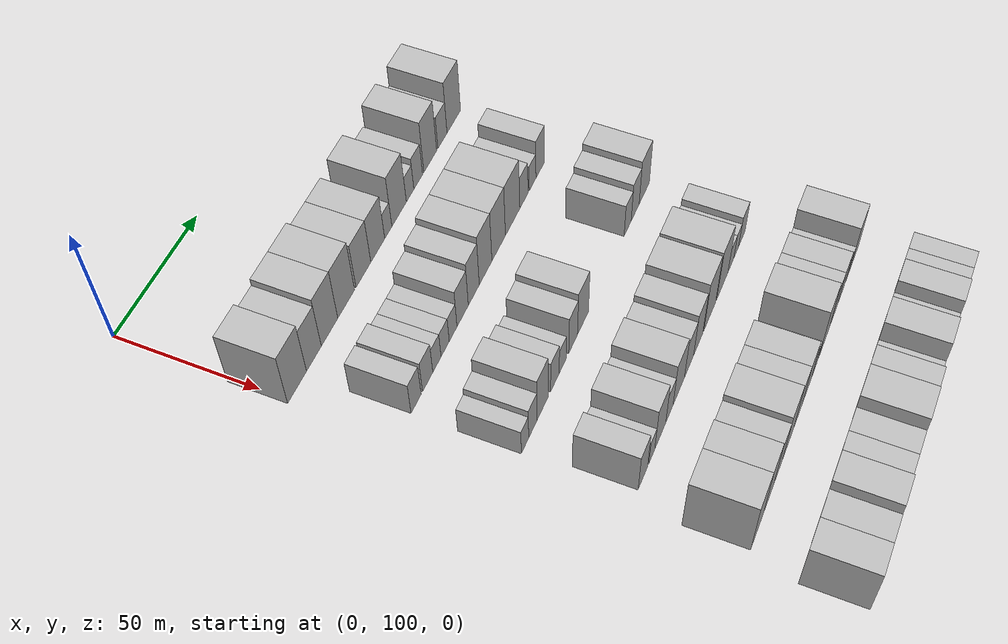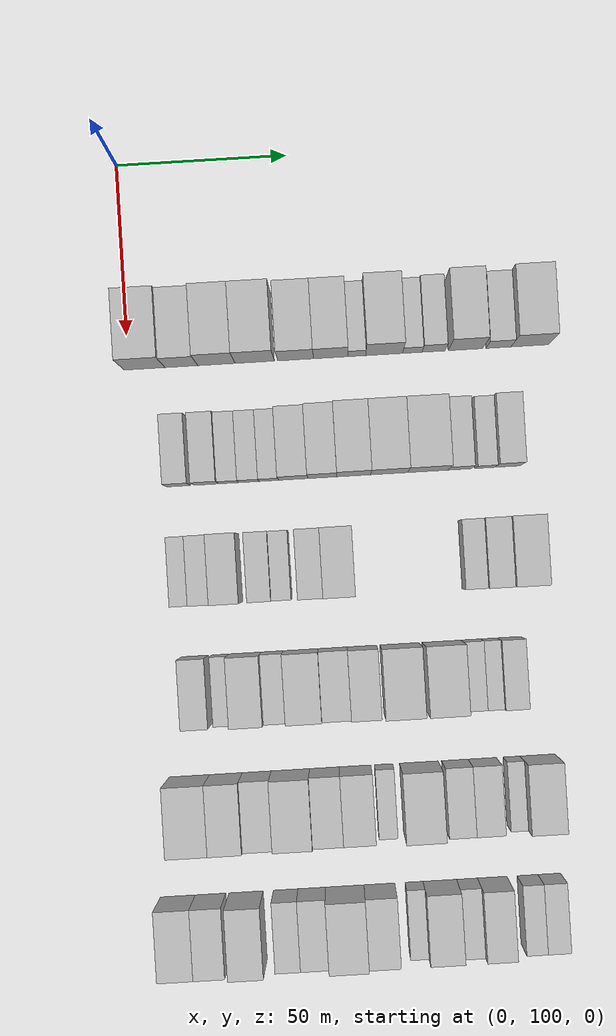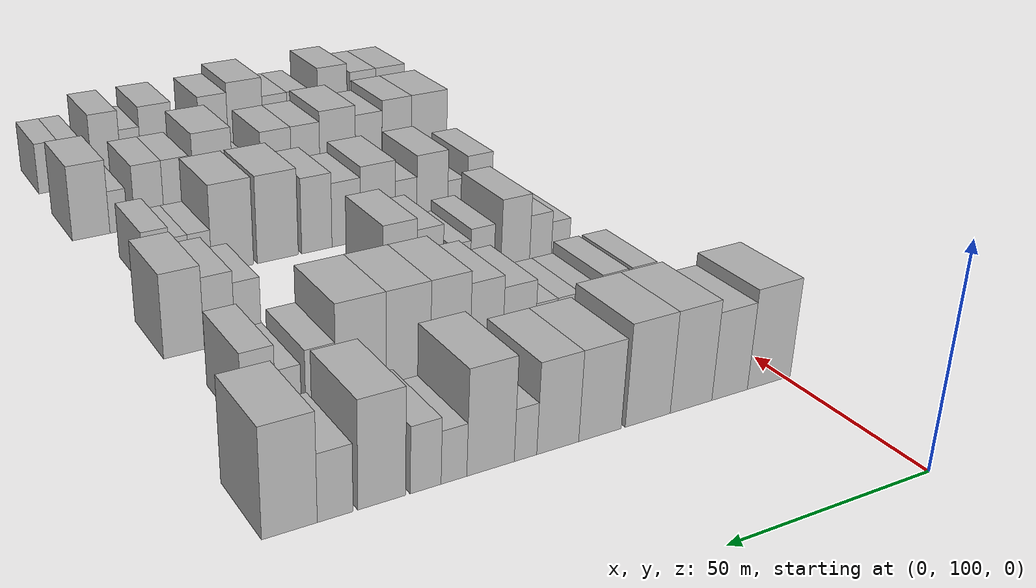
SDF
<sdf version="1.6">
 <world name="default">
  <model name="building_70">
   <static>1</static>
   <pose>50.0000 104.7687 0 0.000000 0.000000 0.000000</pose>
   <link name="link">
    <pose>0 0 12.00 0 0 0</pose>
    <collision name="collision"><geometry><box><size>20.0000 11.9978 24.0000</size></box></geometry></collision>
    <visual name="visual">
     <cast_shadows>0</cast_shadows>
     <geometry><box><size>20.0000 11.9978 24.0000</size></box></geometry>
     <material>
      <script>
       <uri>model://HANNAS_wall/materials/scripts</uri>
       <uri>model://HANNAS_wall/materials/textures</uri>
       <name>vrc/HANNAS_wall</name>
      </script>
     </material>
    </visual>
   </link>
  </model>
  <model name="building_71">
   <static>1</static>
   <pose>50.0000 115.5978 0 0.000000 0.000000 0.000000</pose>
   <link name="link">
    <pose>0 0 10.50 0 0 0</pose>
    <collision name="collision"><geometry><box><size>20.0000 9.6604 21.0000</size></box></geometry></collision>
    <visual name="visual">
     <cast_shadows>0</cast_shadows>
     <geometry><box><size>20.0000 9.6604 21.0000</size></box></geometry>
     <material>
      <script>
       <uri>model://HANNAS_wall/materials/scripts</uri>
       <uri>model://HANNAS_wall/materials/textures</uri>
       <name>vrc/HANNAS_wall</name>
      </script>
     </material>
    </visual>
   </link>
  </model>
  <model name="building_72">
   <static>1</static>
   <pose>50.0000 125.9151 0 0.000000 0.000000 0.000000</pose>
   <link name="link">
    <pose>0 0 12.00 0 0 0</pose>
    <collision name="collision"><geometry><box><size>20.0000 10.9743 24.0000</size></box></geometry></collision>
    <visual name="visual">
     <cast_shadows>0</cast_shadows>
     <geometry><box><size>20.0000 10.9743 24.0000</size></box></geometry>
     <material>
      <script>
       <uri>model://HANNAS_wall/materials/scripts</uri>
       <uri>model://HANNAS_wall/materials/textures</uri>
       <name>vrc/HANNAS_wall</name>
      </script>
     </material>
    </visual>
   </link>
  </model>
  <model name="building_73">
   <static>1</static>
   <pose>50.0000 137.1472 0 0.000000 0.000000 0.000000</pose>
   <link name="link">
    <pose>0 0 12.00 0 0 0</pose>
    <collision name="collision"><geometry><box><size>20.0000 11.4898 24.0000</size></box></geometry></collision>
    <visual name="visual">
     <cast_shadows>0</cast_shadows>
     <geometry><box><size>20.0000 11.4898 24.0000</size></box></geometry>
     <material>
      <script>
       <uri>model://HANNAS_wall/materials/scripts</uri>
       <uri>model://HANNAS_wall/materials/textures</uri>
       <name>vrc/HANNAS_wall</name>
      </script>
     </material>
    </visual>
   </link>
  </model>
  <model name="building_74">
   <static>1</static>
   <pose>50.0000 149.1418 0 0.000000 0.000000 0.000000</pose>
   <link name="link">
    <pose>0 0 10.50 0 0 0</pose>
    <collision name="collision"><geometry><box><size>20.0000 10.4993 21.0000</size></box></geometry></collision>
    <visual name="visual">
     <cast_shadows>0</cast_shadows>
     <geometry><box><size>20.0000 10.4993 21.0000</size></box></geometry>
     <material>
      <script>
       <uri>model://HANNAS_wall/materials/scripts</uri>
       <uri>model://HANNAS_wall/materials/textures</uri>
       <name>vrc/HANNAS_wall</name>
      </script>
     </material>
    </visual>
   </link>
  </model>
  <model name="building_75">
   <static>1</static>
   <pose>50.0000 159.4135 0 0.000000 0.000000 0.000000</pose>
   <link name="link">
    <pose>0 0 10.50 0 0 0</pose>
    <collision name="collision"><geometry><box><size>20.0000 10.0442 21.0000</size></box></geometry></collision>
    <visual name="visual">
     <cast_shadows>0</cast_shadows>
     <geometry><box><size>20.0000 10.0442 21.0000</size></box></geometry>
     <material>
      <script>
       <uri>model://HANNAS_wall/materials/scripts</uri>
       <uri>model://HANNAS_wall/materials/textures</uri>
       <name>vrc/HANNAS_wall</name>
      </script>
     </material>
    </visual>
   </link>
  </model>
  <model name="building_76">
   <static>1</static>
   <pose>50.0000 167.0654 0 0.000000 0.000000 0.000000</pose>
   <link name="link">
    <pose>0 0 6.00 0 0 0</pose>
    <collision name="collision"><geometry><box><size>20.0000 5.2596 12.0000</size></box></geometry></collision>
    <visual name="visual">
     <cast_shadows>0</cast_shadows>
     <geometry><box><size>20.0000 5.2596 12.0000</size></box></geometry>
     <material>
      <script>
       <uri>model://HANNAS_wall/materials/scripts</uri>
       <uri>model://HANNAS_wall/materials/textures</uri>
       <name>vrc/HANNAS_wall</name>
      </script>
     </material>
    </visual>
   </link>
  </model>
  <model name="building_77">
   <static>1</static>
   <pose>50.0000 175.1060 0 0.000000 0.000000 0.000000</pose>
   <link name="link">
    <pose>0 0 12.00 0 0 0</pose>
    <collision name="collision"><geometry><box><size>20.0000 10.8216 24.0000</size></box></geometry></collision>
    <visual name="visual">
     <cast_shadows>0</cast_shadows>
     <geometry><box><size>20.0000 10.8216 24.0000</size></box></geometry>
     <material>
      <script>
       <uri>model://HANNAS_wall/materials/scripts</uri>
       <uri>model://HANNAS_wall/materials/textures</uri>
       <name>vrc/HANNAS_wall</name>
      </script>
     </material>
    </visual>
   </link>
  </model>
  <model name="building_78">
   <static>1</static>
   <pose>50.0000 183.3770 0 0.000000 0.000000 0.000000</pose>
   <link name="link">
    <pose>0 0 6.00 0 0 0</pose>
    <collision name="collision"><geometry><box><size>20.0000 5.7204 12.0000</size></box></geometry></collision>
    <visual name="visual">
     <cast_shadows>0</cast_shadows>
     <geometry><box><size>20.0000 5.7204 12.0000</size></box></geometry>
     <material>
      <script>
       <uri>model://HANNAS_wall/materials/scripts</uri>
       <uri>model://HANNAS_wall/materials/textures</uri>
       <name>vrc/HANNAS_wall</name>
      </script>
     </material>
    </visual>
   </link>
  </model>
  <model name="building_79">
   <static>1</static>
   <pose>50.0000 189.6017 0 0.000000 0.000000 0.000000</pose>
   <link name="link">
    <pose>0 0 7.50 0 0 0</pose>
    <collision name="collision"><geometry><box><size>20.0000 6.7291 15.0000</size></box></geometry></collision>
    <visual name="visual">
     <cast_shadows>0</cast_shadows>
     <geometry><box><size>20.0000 6.7291 15.0000</size></box></geometry>
     <material>
      <script>
       <uri>model://HANNAS_wall/materials/scripts</uri>
       <uri>model://HANNAS_wall/materials/textures</uri>
       <name>vrc/HANNAS_wall</name>
      </script>
     </material>
    </visual>
   </link>
  </model>
  <model name="building_80">
   <static>1</static>
   <pose>50.0000 199.0172 0 0.000000 0.000000 0.000000</pose>
   <link name="link">
    <pose>0 0 12.00 0 0 0</pose>
    <collision name="collision"><geometry><box><size>20.0000 10.1020 24.0000</size></box></geometry></collision>
    <visual name="visual">
     <cast_shadows>0</cast_shadows>
     <geometry><box><size>20.0000 10.1020 24.0000</size></box></geometry>
     <material>
      <script>
       <uri>model://HANNAS_wall/materials/scripts</uri>
       <uri>model://HANNAS_wall/materials/textures</uri>
       <name>vrc/HANNAS_wall</name>
      </script>
     </material>
    </visual>
   </link>
  </model>
  <model name="building_81">
   <static>1</static>
   <pose>50.0000 208.7307 0 0.000000 0.000000 0.000000</pose>
   <link name="link">
    <pose>0 0 7.50 0 0 0</pose>
    <collision name="collision"><geometry><box><size>20.0000 7.3249 15.0000</size></box></geometry></collision>
    <visual name="visual">
     <cast_shadows>0</cast_shadows>
     <geometry><box><size>20.0000 7.3249 15.0000</size></box></geometry>
     <material>
      <script>
       <uri>model://HANNAS_wall/materials/scripts</uri>
       <uri>model://HANNAS_wall/materials/textures</uri>
       <name>vrc/HANNAS_wall</name>
      </script>
     </material>
    </visual>
   </link>
  </model>
  <model name="building_82">
   <static>1</static>
   <pose>50.0000 217.9473 0 0.000000 0.000000 0.000000</pose>
   <link name="link">
    <pose>0 0 12.00 0 0 0</pose>
    <collision name="collision"><geometry><box><size>20.0000 11.1084 24.0000</size></box></geometry></collision>
    <visual name="visual">
     <cast_shadows>0</cast_shadows>
     <geometry><box><size>20.0000 11.1084 24.0000</size></box></geometry>
     <material>
      <script>
       <uri>model://HANNAS_wall/materials/scripts</uri>
       <uri>model://HANNAS_wall/materials/textures</uri>
       <name>vrc/HANNAS_wall</name>
      </script>
     </material>
    </visual>
   </link>
  </model>
  <model name="building_185">
   <static>1</static>
   <pose>85.0000 112.7868 0 0.000000 0.000000 0.000000</pose>
   <link name="link">
    <pose>0 0 7.50 0 0 0</pose>
    <collision name="collision"><geometry><box><size>20.0000 6.9865 15.0000</size></box></geometry></collision>
    <visual name="visual">
     <cast_shadows>0</cast_shadows>
     <geometry><box><size>20.0000 6.9865 15.0000</size></box></geometry>
     <material>
      <script>
       <uri>model://HANNAS_wall/materials/scripts</uri>
       <uri>model://HANNAS_wall/materials/textures</uri>
       <name>vrc/HANNAS_wall</name>
      </script>
     </material>
    </visual>
   </link>
  </model>
  <model name="building_186">
   <static>1</static>
   <pose>85.0000 120.9057 0 0.000000 0.000000 0.000000</pose>
   <link name="link">
    <pose>0 0 7.50 0 0 0</pose>
    <collision name="collision"><geometry><box><size>20.0000 7.2514 15.0000</size></box></geometry></collision>
    <visual name="visual">
     <cast_shadows>0</cast_shadows>
     <geometry><box><size>20.0000 7.2514 15.0000</size></box></geometry>
     <material>
      <script>
       <uri>model://HANNAS_wall/materials/scripts</uri>
       <uri>model://HANNAS_wall/materials/textures</uri>
       <name>vrc/HANNAS_wall</name>
      </script>
     </material>
    </visual>
   </link>
  </model>
  <model name="building_187">
   <static>1</static>
   <pose>85.0000 127.4930 0 0.000000 0.000000 0.000000</pose>
   <link name="link">
    <pose>0 0 6.00 0 0 0</pose>
    <collision name="collision"><geometry><box><size>20.0000 5.9233 12.0000</size></box></geometry></collision>
    <visual name="visual">
     <cast_shadows>0</cast_shadows>
     <geometry><box><size>20.0000 5.9233 12.0000</size></box></geometry>
     <material>
      <script>
       <uri>model://HANNAS_wall/materials/scripts</uri>
       <uri>model://HANNAS_wall/materials/textures</uri>
       <name>vrc/HANNAS_wall</name>
      </script>
     </material>
    </visual>
   </link>
  </model>
  <model name="building_188">
   <static>1</static>
   <pose>85.0000 133.4436 0 0.000000 0.000000 0.000000</pose>
   <link name="link">
    <pose>0 0 6.00 0 0 0</pose>
    <collision name="collision"><geometry><box><size>20.0000 5.9779 12.0000</size></box></geometry></collision>
    <visual name="visual">
     <cast_shadows>0</cast_shadows>
     <geometry><box><size>20.0000 5.9779 12.0000</size></box></geometry>
     <material>
      <script>
       <uri>model://HANNAS_wall/materials/scripts</uri>
       <uri>model://HANNAS_wall/materials/textures</uri>
       <name>vrc/HANNAS_wall</name>
      </script>
     </material>
    </visual>
   </link>
  </model>
  <model name="building_189">
   <static>1</static>
   <pose>85.0000 139.2999 0 0.000000 0.000000 0.000000</pose>
   <link name="link">
    <pose>0 0 6.00 0 0 0</pose>
    <collision name="collision"><geometry><box><size>20.0000 5.7346 12.0000</size></box></geometry></collision>
    <visual name="visual">
     <cast_shadows>0</cast_shadows>
     <geometry><box><size>20.0000 5.7346 12.0000</size></box></geometry>
     <material>
      <script>
       <uri>model://HANNAS_wall/materials/scripts</uri>
       <uri>model://HANNAS_wall/materials/textures</uri>
       <name>vrc/HANNAS_wall</name>
      </script>
     </material>
    </visual>
   </link>
  </model>
  <model name="building_190">
   <static>1</static>
   <pose>85.0000 146.4327 0 0.000000 0.000000 0.000000</pose>
   <link name="link">
    <pose>0 0 9.00 0 0 0</pose>
    <collision name="collision"><geometry><box><size>20.0000 8.5310 18.0000</size></box></geometry></collision>
    <visual name="visual">
     <cast_shadows>0</cast_shadows>
     <geometry><box><size>20.0000 8.5310 18.0000</size></box></geometry>
     <material>
      <script>
       <uri>model://HANNAS_wall/materials/scripts</uri>
       <uri>model://HANNAS_wall/materials/textures</uri>
       <name>vrc/HANNAS_wall</name>
      </script>
     </material>
    </visual>
   </link>
  </model>
  <model name="building_191">
   <static>1</static>
   <pose>85.0000 154.9079 0 0.000000 0.000000 0.000000</pose>
   <link name="link">
    <pose>0 0 10.50 0 0 0</pose>
    <collision name="collision"><geometry><box><size>20.0000 8.4193 21.0000</size></box></geometry></collision>
    <visual name="visual">
     <cast_shadows>0</cast_shadows>
     <geometry><box><size>20.0000 8.4193 21.0000</size></box></geometry>
     <material>
      <script>
       <uri>model://HANNAS_wall/materials/scripts</uri>
       <uri>model://HANNAS_wall/materials/textures</uri>
       <name>vrc/HANNAS_wall</name>
      </script>
     </material>
    </visual>
   </link>
  </model>
  <model name="building_192">
   <static>1</static>
   <pose>85.0000 164.0700 0 0.000000 0.000000 0.000000</pose>
   <link name="link">
    <pose>0 0 12.00 0 0 0</pose>
    <collision name="collision"><geometry><box><size>20.0000 9.9051 24.0000</size></box></geometry></collision>
    <visual name="visual">
     <cast_shadows>0</cast_shadows>
     <geometry><box><size>20.0000 9.9051 24.0000</size></box></geometry>
     <material>
      <script>
       <uri>model://HANNAS_wall/materials/scripts</uri>
       <uri>model://HANNAS_wall/materials/textures</uri>
       <name>vrc/HANNAS_wall</name>
      </script>
     </material>
    </visual>
   </link>
  </model>
  <model name="building_193">
   <static>1</static>
   <pose>85.0000 174.4506 0 0.000000 0.000000 0.000000</pose>
   <link name="link">
    <pose>0 0 12.00 0 0 0</pose>
    <collision name="collision"><geometry><box><size>20.0000 10.8561 24.0000</size></box></geometry></collision>
    <visual name="visual">
     <cast_shadows>0</cast_shadows>
     <geometry><box><size>20.0000 10.8561 24.0000</size></box></geometry>
     <material>
      <script>
       <uri>model://HANNAS_wall/materials/scripts</uri>
       <uri>model://HANNAS_wall/materials/textures</uri>
       <name>vrc/HANNAS_wall</name>
      </script>
     </material>
    </visual>
   </link>
  </model>
  <model name="building_194">
   <static>1</static>
   <pose>85.0000 185.8056 0 0.000000 0.000000 0.000000</pose>
   <link name="link">
    <pose>0 0 12.00 0 0 0</pose>
    <collision name="collision"><geometry><box><size>20.0000 11.8539 24.0000</size></box></geometry></collision>
    <visual name="visual">
     <cast_shadows>0</cast_shadows>
     <geometry><box><size>20.0000 11.8539 24.0000</size></box></geometry>
     <material>
      <script>
       <uri>model://HANNAS_wall/materials/scripts</uri>
       <uri>model://HANNAS_wall/materials/textures</uri>
       <name>vrc/HANNAS_wall</name>
      </script>
     </material>
    </visual>
   </link>
  </model>
  <model name="building_195">
   <static>1</static>
   <pose>85.0000 195.1977 0 0.000000 0.000000 0.000000</pose>
   <link name="link">
    <pose>0 0 7.50 0 0 0</pose>
    <collision name="collision"><geometry><box><size>20.0000 6.9302 15.0000</size></box></geometry></collision>
    <visual name="visual">
     <cast_shadows>0</cast_shadows>
     <geometry><box><size>20.0000 6.9302 15.0000</size></box></geometry>
     <material>
      <script>
       <uri>model://HANNAS_wall/materials/scripts</uri>
       <uri>model://HANNAS_wall/materials/textures</uri>
       <name>vrc/HANNAS_wall</name>
      </script>
     </material>
    </visual>
   </link>
  </model>
  <model name="building_196">
   <static>1</static>
   <pose>85.0000 202.5391 0 0.000000 0.000000 0.000000</pose>
   <link name="link">
    <pose>0 0 6.00 0 0 0</pose>
    <collision name="collision"><geometry><box><size>20.0000 5.7527 12.0000</size></box></geometry></collision>
    <visual name="visual">
     <cast_shadows>0</cast_shadows>
     <geometry><box><size>20.0000 5.7527 12.0000</size></box></geometry>
     <material>
      <script>
       <uri>model://HANNAS_wall/materials/scripts</uri>
       <uri>model://HANNAS_wall/materials/textures</uri>
       <name>vrc/HANNAS_wall</name>
      </script>
     </material>
    </visual>
   </link>
  </model>
  <model name="building_197">
   <static>1</static>
   <pose>85.0000 209.1763 0 0.000000 0.000000 0.000000</pose>
   <link name="link">
    <pose>0 0 9.00 0 0 0</pose>
    <collision name="collision"><geometry><box><size>20.0000 7.5217 18.0000</size></box></geometry></collision>
    <visual name="visual">
     <cast_shadows>0</cast_shadows>
     <geometry><box><size>20.0000 7.5217 18.0000</size></box></geometry>
     <material>
      <script>
       <uri>model://HANNAS_wall/materials/scripts</uri>
       <uri>model://HANNAS_wall/materials/textures</uri>
       <name>vrc/HANNAS_wall</name>
      </script>
     </material>
    </visual>
   </link>
  </model>
  <model name="building_314">
   <static>1</static>
   <pose>120.0000 111.7312 0 0.000000 0.000000 0.000000</pose>
   <link name="link">
    <pose>0 0 6.00 0 0 0</pose>
    <collision name="collision"><geometry><box><size>20.0000 5.4751 12.0000</size></box></geometry></collision>
    <visual name="visual">
     <cast_shadows>0</cast_shadows>
     <geometry><box><size>20.0000 5.4751 12.0000</size></box></geometry>
     <material>
      <script>
       <uri>model://HANNAS_wall/materials/scripts</uri>
       <uri>model://HANNAS_wall/materials/textures</uri>
       <name>vrc/HANNAS_wall</name>
      </script>
     </material>
    </visual>
   </link>
  </model>
  <model name="building_315">
   <static>1</static>
   <pose>120.0000 117.7094 0 0.000000 0.000000 0.000000</pose>
   <link name="link">
    <pose>0 0 7.50 0 0 0</pose>
    <collision name="collision"><geometry><box><size>20.0000 6.4812 15.0000</size></box></geometry></collision>
    <visual name="visual">
     <cast_shadows>0</cast_shadows>
     <geometry><box><size>20.0000 6.4812 15.0000</size></box></geometry>
     <material>
      <script>
       <uri>model://HANNAS_wall/materials/scripts</uri>
       <uri>model://HANNAS_wall/materials/textures</uri>
       <name>vrc/HANNAS_wall</name>
      </script>
     </material>
    </visual>
   </link>
  </model>
  <model name="building_316">
   <static>1</static>
   <pose>120.0000 125.1787 0 0.000000 0.000000 0.000000</pose>
   <link name="link">
    <pose>0 0 10.50 0 0 0</pose>
    <collision name="collision"><geometry><box><size>20.0000 8.4575 21.0000</size></box></geometry></collision>
    <visual name="visual">
     <cast_shadows>0</cast_shadows>
     <geometry><box><size>20.0000 8.4575 21.0000</size></box></geometry>
     <material>
      <script>
       <uri>model://HANNAS_wall/materials/scripts</uri>
       <uri>model://HANNAS_wall/materials/textures</uri>
       <name>vrc/HANNAS_wall</name>
      </script>
     </material>
    </visual>
   </link>
  </model>
  <model name="building_317">
   <static>1</static>
   <pose>120.0000 134.8123 0 0.000000 0.000000 0.000000</pose>
   <link name="link">
    <pose>0 0 7.50 0 0 0</pose>
    <collision name="collision"><geometry><box><size>20.0000 6.8098 15.0000</size></box></geometry></collision>
    <visual name="visual">
     <cast_shadows>0</cast_shadows>
     <geometry><box><size>20.0000 6.8098 15.0000</size></box></geometry>
     <material>
      <script>
       <uri>model://HANNAS_wall/materials/scripts</uri>
       <uri>model://HANNAS_wall/materials/textures</uri>
       <name>vrc/HANNAS_wall</name>
      </script>
     </material>
    </visual>
   </link>
  </model>
  <model name="building_318">
   <static>1</static>
   <pose>120.0000 141.0843 0 0.000000 0.000000 0.000000</pose>
   <link name="link">
    <pose>0 0 6.00 0 0 0</pose>
    <collision name="collision"><geometry><box><size>20.0000 5.7341 12.0000</size></box></geometry></collision>
    <visual name="visual">
     <cast_shadows>0</cast_shadows>
     <geometry><box><size>20.0000 5.7341 12.0000</size></box></geometry>
     <material>
      <script>
       <uri>model://HANNAS_wall/materials/scripts</uri>
       <uri>model://HANNAS_wall/materials/textures</uri>
       <name>vrc/HANNAS_wall</name>
      </script>
     </material>
    </visual>
   </link>
  </model>
  <model name="building_319">
   <static>1</static>
   <pose>120.0000 149.5598 0 0.000000 0.000000 0.000000</pose>
   <link name="link">
    <pose>0 0 9.00 0 0 0</pose>
    <collision name="collision"><geometry><box><size>20.0000 7.2170 18.0000</size></box></geometry></collision>
    <visual name="visual">
     <cast_shadows>0</cast_shadows>
     <geometry><box><size>20.0000 7.2170 18.0000</size></box></geometry>
     <material>
      <script>
       <uri>model://HANNAS_wall/materials/scripts</uri>
       <uri>model://HANNAS_wall/materials/textures</uri>
       <name>vrc/HANNAS_wall</name>
      </script>
     </material>
    </visual>
   </link>
  </model>
  <model name="building_320">
   <static>1</static>
   <pose>120.0000 157.7637 0 0.000000 0.000000 0.000000</pose>
   <link name="link">
    <pose>0 0 10.50 0 0 0</pose>
    <collision name="collision"><geometry><box><size>20.0000 9.1908 21.0000</size></box></geometry></collision>
    <visual name="visual">
     <cast_shadows>0</cast_shadows>
     <geometry><box><size>20.0000 9.1908 21.0000</size></box></geometry>
     <material>
      <script>
       <uri>model://HANNAS_wall/materials/scripts</uri>
       <uri>model://HANNAS_wall/materials/textures</uri>
       <name>vrc/HANNAS_wall</name>
      </script>
     </material>
    </visual>
   </link>
  </model>
  <model name="building_321">
   <static>1</static>
   <pose>120.0000 197.0900 0 0.000000 0.000000 0.000000</pose>
   <link name="link">
    <pose>0 0 7.50 0 0 0</pose>
    <collision name="collision"><geometry><box><size>20.0000 6.4872 15.0000</size></box></geometry></collision>
    <visual name="visual">
     <cast_shadows>0</cast_shadows>
     <geometry><box><size>20.0000 6.4872 15.0000</size></box></geometry>
     <material>
      <script>
       <uri>model://HANNAS_wall/materials/scripts</uri>
       <uri>model://HANNAS_wall/materials/textures</uri>
       <name>vrc/HANNAS_wall</name>
      </script>
     </material>
    </visual>
   </link>
  </model>
  <model name="building_322">
   <static>1</static>
   <pose>120.0000 204.0534 0 0.000000 0.000000 0.000000</pose>
   <link name="link">
    <pose>0 0 9.00 0 0 0</pose>
    <collision name="collision"><geometry><box><size>20.0000 7.4396 18.0000</size></box></geometry></collision>
    <visual name="visual">
     <cast_shadows>0</cast_shadows>
     <geometry><box><size>20.0000 7.4396 18.0000</size></box></geometry>
     <material>
      <script>
       <uri>model://HANNAS_wall/materials/scripts</uri>
       <uri>model://HANNAS_wall/materials/textures</uri>
       <name>vrc/HANNAS_wall</name>
      </script>
     </material>
    </visual>
   </link>
  </model>
  <model name="building_323">
   <static>1</static>
   <pose>120.0000 212.6141 0 0.000000 0.000000 0.000000</pose>
   <link name="link">
    <pose>0 0 10.50 0 0 0</pose>
    <collision name="collision"><geometry><box><size>20.0000 9.6819 21.0000</size></box></geometry></collision>
    <visual name="visual">
     <cast_shadows>0</cast_shadows>
     <geometry><box><size>20.0000 9.6819 21.0000</size></box></geometry>
     <material>
      <script>
       <uri>model://HANNAS_wall/materials/scripts</uri>
       <uri>model://HANNAS_wall/materials/textures</uri>
       <name>vrc/HANNAS_wall</name>
      </script>
     </material>
    </visual>
   </link>
  </model>
  <model name="building_440">
   <static>1</static>
   <pose>155.0000 114.5446 0 0.000000 0.000000 0.000000</pose>
   <link name="link">
    <pose>0 0 9.00 0 0 0</pose>
    <collision name="collision"><geometry><box><size>20.0000 7.8496 18.0000</size></box></geometry></collision>
    <visual name="visual">
     <cast_shadows>0</cast_shadows>
     <geometry><box><size>20.0000 7.8496 18.0000</size></box></geometry>
     <material>
      <script>
       <uri>model://HANNAS_wall/materials/scripts</uri>
       <uri>model://HANNAS_wall/materials/textures</uri>
       <name>vrc/HANNAS_wall</name>
      </script>
     </material>
    </visual>
   </link>
  </model>
  <model name="building_441">
   <static>1</static>
   <pose>155.0000 122.0059 0 0.000000 0.000000 0.000000</pose>
   <link name="link">
    <pose>0 0 6.00 0 0 0</pose>
    <collision name="collision"><geometry><box><size>20.0000 5.0730 12.0000</size></box></geometry></collision>
    <visual name="visual">
     <cast_shadows>0</cast_shadows>
     <geometry><box><size>20.0000 5.0730 12.0000</size></box></geometry>
     <material>
      <script>
       <uri>model://HANNAS_wall/materials/scripts</uri>
       <uri>model://HANNAS_wall/materials/textures</uri>
       <name>vrc/HANNAS_wall</name>
      </script>
     </material>
    </visual>
   </link>
  </model>
  <model name="building_442">
   <static>1</static>
   <pose>155.0000 129.2894 0 0.000000 0.000000 0.000000</pose>
   <link name="link">
    <pose>0 0 10.50 0 0 0</pose>
    <collision name="collision"><geometry><box><size>20.0000 9.4941 21.0000</size></box></geometry></collision>
    <visual name="visual">
     <cast_shadows>0</cast_shadows>
     <geometry><box><size>20.0000 9.4941 21.0000</size></box></geometry>
     <material>
      <script>
       <uri>model://HANNAS_wall/materials/scripts</uri>
       <uri>model://HANNAS_wall/materials/textures</uri>
       <name>vrc/HANNAS_wall</name>
      </script>
     </material>
    </visual>
   </link>
  </model>
  <model name="building_443">
   <static>1</static>
   <pose>155.0000 137.2567 0 0.000000 0.000000 0.000000</pose>
   <link name="link">
    <pose>0 0 7.50 0 0 0</pose>
    <collision name="collision"><geometry><box><size>20.0000 6.4404 15.0000</size></box></geometry></collision>
    <visual name="visual">
     <cast_shadows>0</cast_shadows>
     <geometry><box><size>20.0000 6.4404 15.0000</size></box></geometry>
     <material>
      <script>
       <uri>model://HANNAS_wall/materials/scripts</uri>
       <uri>model://HANNAS_wall/materials/textures</uri>
       <name>vrc/HANNAS_wall</name>
      </script>
     </material>
    </visual>
   </link>
  </model>
  <model name="building_444">
   <static>1</static>
   <pose>155.0000 145.6198 0 0.000000 0.000000 0.000000</pose>
   <link name="link">
    <pose>0 0 10.50 0 0 0</pose>
    <collision name="collision"><geometry><box><size>20.0000 10.2858 21.0000</size></box></geometry></collision>
    <visual name="visual">
     <cast_shadows>0</cast_shadows>
     <geometry><box><size>20.0000 10.2858 21.0000</size></box></geometry>
     <material>
      <script>
       <uri>model://HANNAS_wall/materials/scripts</uri>
       <uri>model://HANNAS_wall/materials/textures</uri>
       <name>vrc/HANNAS_wall</name>
      </script>
     </material>
    </visual>
   </link>
  </model>
  <model name="building_445">
   <static>1</static>
   <pose>155.0000 154.9505 0 0.000000 0.000000 0.000000</pose>
   <link name="link">
    <pose>0 0 9.00 0 0 0</pose>
    <collision name="collision"><geometry><box><size>20.0000 8.3755 18.0000</size></box></geometry></collision>
    <visual name="visual">
     <cast_shadows>0</cast_shadows>
     <geometry><box><size>20.0000 8.3755 18.0000</size></box></geometry>
     <material>
      <script>
       <uri>model://HANNAS_wall/materials/scripts</uri>
       <uri>model://HANNAS_wall/materials/textures</uri>
       <name>vrc/HANNAS_wall</name>
      </script>
     </material>
    </visual>
   </link>
  </model>
  <model name="building_446">
   <static>1</static>
   <pose>155.0000 163.4527 0 0.000000 0.000000 0.000000</pose>
   <link name="link">
    <pose>0 0 10.50 0 0 0</pose>
    <collision name="collision"><geometry><box><size>20.0000 8.6290 21.0000</size></box></geometry></collision>
    <visual name="visual">
     <cast_shadows>0</cast_shadows>
     <geometry><box><size>20.0000 8.6290 21.0000</size></box></geometry>
     <material>
      <script>
       <uri>model://HANNAS_wall/materials/scripts</uri>
       <uri>model://HANNAS_wall/materials/textures</uri>
       <name>vrc/HANNAS_wall</name>
      </script>
     </material>
    </visual>
   </link>
  </model>
  <model name="building_447">
   <static>1</static>
   <pose>155.0000 174.4686 0 0.000000 0.000000 0.000000</pose>
   <link name="link">
    <pose>0 0 12.00 0 0 0</pose>
    <collision name="collision"><geometry><box><size>20.0000 11.4028 24.0000</size></box></geometry></collision>
    <visual name="visual">
     <cast_shadows>0</cast_shadows>
     <geometry><box><size>20.0000 11.4028 24.0000</size></box></geometry>
     <material>
      <script>
       <uri>model://HANNAS_wall/materials/scripts</uri>
       <uri>model://HANNAS_wall/materials/textures</uri>
       <name>vrc/HANNAS_wall</name>
      </script>
     </material>
    </visual>
   </link>
  </model>
  <model name="building_448">
   <static>1</static>
   <pose>155.0000 186.8073 0 0.000000 0.000000 0.000000</pose>
   <link name="link">
    <pose>0 0 12.00 0 0 0</pose>
    <collision name="collision"><geometry><box><size>20.0000 11.2744 24.0000</size></box></geometry></collision>
    <visual name="visual">
     <cast_shadows>0</cast_shadows>
     <geometry><box><size>20.0000 11.2744 24.0000</size></box></geometry>
     <material>
      <script>
       <uri>model://HANNAS_wall/materials/scripts</uri>
       <uri>model://HANNAS_wall/materials/textures</uri>
       <name>vrc/HANNAS_wall</name>
      </script>
     </material>
    </visual>
   </link>
  </model>
  <model name="building_449">
   <static>1</static>
   <pose>155.0000 195.3979 0 0.000000 0.000000 0.000000</pose>
   <link name="link">
    <pose>0 0 6.00 0 0 0</pose>
    <collision name="collision"><geometry><box><size>20.0000 5.9069 12.0000</size></box></geometry></collision>
    <visual name="visual">
     <cast_shadows>0</cast_shadows>
     <geometry><box><size>20.0000 5.9069 12.0000</size></box></geometry>
     <material>
      <script>
       <uri>model://HANNAS_wall/materials/scripts</uri>
       <uri>model://HANNAS_wall/materials/textures</uri>
       <name>vrc/HANNAS_wall</name>
      </script>
     </material>
    </visual>
   </link>
  </model>
  <model name="building_450">
   <static>1</static>
   <pose>155.0000 200.7643 0 0.000000 0.000000 0.000000</pose>
   <link name="link">
    <pose>0 0 6.00 0 0 0</pose>
    <collision name="collision"><geometry><box><size>20.0000 4.8259 12.0000</size></box></geometry></collision>
    <visual name="visual">
     <cast_shadows>0</cast_shadows>
     <geometry><box><size>20.0000 4.8259 12.0000</size></box></geometry>
     <material>
      <script>
       <uri>model://HANNAS_wall/materials/scripts</uri>
       <uri>model://HANNAS_wall/materials/textures</uri>
       <name>vrc/HANNAS_wall</name>
      </script>
     </material>
    </visual>
   </link>
  </model>
  <model name="building_451">
   <static>1</static>
   <pose>155.0000 206.6216 0 0.000000 0.000000 0.000000</pose>
   <link name="link">
    <pose>0 0 7.50 0 0 0</pose>
    <collision name="collision"><geometry><box><size>20.0000 6.8889 15.0000</size></box></geometry></collision>
    <visual name="visual">
     <cast_shadows>0</cast_shadows>
     <geometry><box><size>20.0000 6.8889 15.0000</size></box></geometry>
     <material>
      <script>
       <uri>model://HANNAS_wall/materials/scripts</uri>
       <uri>model://HANNAS_wall/materials/textures</uri>
       <name>vrc/HANNAS_wall</name>
      </script>
     </material>
    </visual>
   </link>
  </model>
  <model name="building_559">
   <static>1</static>
   <pose>190.0000 110.7737 0 0.000000 0.000000 0.000000</pose>
   <link name="link">
    <pose>0 0 12.00 0 0 0</pose>
    <collision name="collision"><geometry><box><size>20.0000 11.8455 24.0000</size></box></geometry></collision>
    <visual name="visual">
     <cast_shadows>0</cast_shadows>
     <geometry><box><size>20.0000 11.8455 24.0000</size></box></geometry>
     <material>
      <script>
       <uri>model://HANNAS_wall/materials/scripts</uri>
       <uri>model://HANNAS_wall/materials/textures</uri>
       <name>vrc/HANNAS_wall</name>
      </script>
     </material>
    </visual>
   </link>
  </model>
  <model name="building_560">
   <static>1</static>
   <pose>190.0000 121.4995 0 0.000000 0.000000 0.000000</pose>
   <link name="link">
    <pose>0 0 12.00 0 0 0</pose>
    <collision name="collision"><geometry><box><size>20.0000 9.6060 24.0000</size></box></geometry></collision>
    <visual name="visual">
     <cast_shadows>0</cast_shadows>
     <geometry><box><size>20.0000 9.6060 24.0000</size></box></geometry>
     <material>
      <script>
       <uri>model://HANNAS_wall/materials/scripts</uri>
       <uri>model://HANNAS_wall/materials/textures</uri>
       <name>vrc/HANNAS_wall</name>
      </script>
     </material>
    </visual>
   </link>
  </model>
  <model name="building_561">
   <static>1</static>
   <pose>190.0000 130.5636 0 0.000000 0.000000 0.000000</pose>
   <link name="link">
    <pose>0 0 10.50 0 0 0</pose>
    <collision name="collision"><geometry><box><size>20.0000 8.5221 21.0000</size></box></geometry></collision>
    <visual name="visual">
     <cast_shadows>0</cast_shadows>
     <geometry><box><size>20.0000 8.5221 21.0000</size></box></geometry>
     <material>
      <script>
       <uri>model://HANNAS_wall/materials/scripts</uri>
       <uri>model://HANNAS_wall/materials/textures</uri>
       <name>vrc/HANNAS_wall</name>
      </script>
     </material>
    </visual>
   </link>
  </model>
  <model name="building_562">
   <static>1</static>
   <pose>190.0000 140.4429 0 0.000000 0.000000 0.000000</pose>
   <link name="link">
    <pose>0 0 12.00 0 0 0</pose>
    <collision name="collision"><geometry><box><size>20.0000 11.2365 24.0000</size></box></geometry></collision>
    <visual name="visual">
     <cast_shadows>0</cast_shadows>
     <geometry><box><size>20.0000 11.2365 24.0000</size></box></geometry>
     <material>
      <script>
       <uri>model://HANNAS_wall/materials/scripts</uri>
       <uri>model://HANNAS_wall/materials/textures</uri>
       <name>vrc/HANNAS_wall</name>
      </script>
     </material>
    </visual>
   </link>
  </model>
  <model name="building_563">
   <static>1</static>
   <pose>190.0000 150.4472 0 0.000000 0.000000 0.000000</pose>
   <link name="link">
    <pose>0 0 10.50 0 0 0</pose>
    <collision name="collision"><geometry><box><size>20.0000 8.7721 21.0000</size></box></geometry></collision>
    <visual name="visual">
     <cast_shadows>0</cast_shadows>
     <geometry><box><size>20.0000 8.7721 21.0000</size></box></geometry>
     <material>
      <script>
       <uri>model://HANNAS_wall/materials/scripts</uri>
       <uri>model://HANNAS_wall/materials/textures</uri>
       <name>vrc/HANNAS_wall</name>
      </script>
     </material>
    </visual>
   </link>
  </model>
  <model name="building_564">
   <static>1</static>
   <pose>190.0000 159.4372 0 0.000000 0.000000 0.000000</pose>
   <link name="link">
    <pose>0 0 10.50 0 0 0</pose>
    <collision name="collision"><geometry><box><size>20.0000 9.2080 21.0000</size></box></geometry></collision>
    <visual name="visual">
     <cast_shadows>0</cast_shadows>
     <geometry><box><size>20.0000 9.2080 21.0000</size></box></geometry>
     <material>
      <script>
       <uri>model://HANNAS_wall/materials/scripts</uri>
       <uri>model://HANNAS_wall/materials/textures</uri>
       <name>vrc/HANNAS_wall</name>
      </script>
     </material>
    </visual>
   </link>
  </model>
  <model name="building_565">
   <static>1</static>
   <pose>190.0000 167.7416 0 0.000000 0.000000 0.000000</pose>
   <link name="link">
    <pose>0 0 6.00 0 0 0</pose>
    <collision name="collision"><geometry><box><size>20.0000 5.4009 12.0000</size></box></geometry></collision>
    <visual name="visual">
     <cast_shadows>0</cast_shadows>
     <geometry><box><size>20.0000 5.4009 12.0000</size></box></geometry>
     <material>
      <script>
       <uri>model://HANNAS_wall/materials/scripts</uri>
       <uri>model://HANNAS_wall/materials/textures</uri>
       <name>vrc/HANNAS_wall</name>
      </script>
     </material>
    </visual>
   </link>
  </model>
  <model name="building_566">
   <static>1</static>
   <pose>190.0000 178.1145 0 0.000000 0.000000 0.000000</pose>
   <link name="link">
    <pose>0 0 12.00 0 0 0</pose>
    <collision name="collision"><geometry><box><size>20.0000 11.3448 24.0000</size></box></geometry></collision>
    <visual name="visual">
     <cast_shadows>0</cast_shadows>
     <geometry><box><size>20.0000 11.3448 24.0000</size></box></geometry>
     <material>
      <script>
       <uri>model://HANNAS_wall/materials/scripts</uri>
       <uri>model://HANNAS_wall/materials/textures</uri>
       <name>vrc/HANNAS_wall</name>
      </script>
     </material>
    </visual>
   </link>
  </model>
  <model name="building_567">
   <static>1</static>
   <pose>190.0000 188.6917 0 0.000000 0.000000 0.000000</pose>
   <link name="link">
    <pose>0 0 9.00 0 0 0</pose>
    <collision name="collision"><geometry><box><size>20.0000 7.8095 18.0000</size></box></geometry></collision>
    <visual name="visual">
     <cast_shadows>0</cast_shadows>
     <geometry><box><size>20.0000 7.8095 18.0000</size></box></geometry>
     <material>
      <script>
       <uri>model://HANNAS_wall/materials/scripts</uri>
       <uri>model://HANNAS_wall/materials/textures</uri>
       <name>vrc/HANNAS_wall</name>
      </script>
     </material>
    </visual>
   </link>
  </model>
  <model name="building_568">
   <static>1</static>
   <pose>190.0000 196.7308 0 0.000000 0.000000 0.000000</pose>
   <link name="link">
    <pose>0 0 9.00 0 0 0</pose>
    <collision name="collision"><geometry><box><size>20.0000 8.2688 18.0000</size></box></geometry></collision>
    <visual name="visual">
     <cast_shadows>0</cast_shadows>
     <geometry><box><size>20.0000 8.2688 18.0000</size></box></geometry>
     <material>
      <script>
       <uri>model://HANNAS_wall/materials/scripts</uri>
       <uri>model://HANNAS_wall/materials/textures</uri>
       <name>vrc/HANNAS_wall</name>
      </script>
     </material>
    </visual>
   </link>
  </model>
  <model name="building_569">
   <static>1</static>
   <pose>190.0000 205.3444 0 0.000000 0.000000 0.000000</pose>
   <link name="link">
    <pose>0 0 6.00 0 0 0</pose>
    <collision name="collision"><geometry><box><size>20.0000 4.9583 12.0000</size></box></geometry></collision>
    <visual name="visual">
     <cast_shadows>0</cast_shadows>
     <geometry><box><size>20.0000 4.9583 12.0000</size></box></geometry>
     <material>
      <script>
       <uri>model://HANNAS_wall/materials/scripts</uri>
       <uri>model://HANNAS_wall/materials/textures</uri>
       <name>vrc/HANNAS_wall</name>
      </script>
     </material>
    </visual>
   </link>
  </model>
  <model name="building_570">
   <static>1</static>
   <pose>190.0000 212.9445 0 0.000000 0.000000 0.000000</pose>
   <link name="link">
    <pose>0 0 10.50 0 0 0</pose>
    <collision name="collision"><geometry><box><size>20.0000 10.2419 21.0000</size></box></geometry></collision>
    <visual name="visual">
     <cast_shadows>0</cast_shadows>
     <geometry><box><size>20.0000 10.2419 21.0000</size></box></geometry>
     <material>
      <script>
       <uri>model://HANNAS_wall/materials/scripts</uri>
       <uri>model://HANNAS_wall/materials/textures</uri>
       <name>vrc/HANNAS_wall</name>
      </script>
     </material>
    </visual>
   </link>
  </model>
  <model name="building_681">
   <static>1</static>
   <pose>225.0000 105.2729 0 0.000000 0.000000 0.000000</pose>
   <link name="link">
    <pose>0 0 10.50 0 0 0</pose>
    <collision name="collision"><geometry><box><size>20.0000 10.2007 21.0000</size></box></geometry></collision>
    <visual name="visual">
     <cast_shadows>0</cast_shadows>
     <geometry><box><size>20.0000 10.2007 21.0000</size></box></geometry>
     <material>
      <script>
       <uri>model://HANNAS_wall/materials/scripts</uri>
       <uri>model://HANNAS_wall/materials/textures</uri>
       <name>vrc/HANNAS_wall</name>
      </script>
     </material>
    </visual>
   </link>
  </model>
  <model name="building_682">
   <static>1</static>
   <pose>225.0000 114.8374 0 0.000000 0.000000 0.000000</pose>
   <link name="link">
    <pose>0 0 10.50 0 0 0</pose>
    <collision name="collision"><geometry><box><size>20.0000 8.9283 21.0000</size></box></geometry></collision>
    <visual name="visual">
     <cast_shadows>0</cast_shadows>
     <geometry><box><size>20.0000 8.9283 21.0000</size></box></geometry>
     <material>
      <script>
       <uri>model://HANNAS_wall/materials/scripts</uri>
       <uri>model://HANNAS_wall/materials/textures</uri>
       <name>vrc/HANNAS_wall</name>
      </script>
     </material>
    </visual>
   </link>
  </model>
  <model name="building_683">
   <static>1</static>
   <pose>225.0000 125.3102 0 0.000000 0.000000 0.000000</pose>
   <link name="link">
    <pose>0 0 12.00 0 0 0</pose>
    <collision name="collision"><geometry><box><size>20.0000 10.0173 24.0000</size></box></geometry></collision>
    <visual name="visual">
     <cast_shadows>0</cast_shadows>
     <geometry><box><size>20.0000 10.0173 24.0000</size></box></geometry>
     <material>
      <script>
       <uri>model://HANNAS_wall/materials/scripts</uri>
       <uri>model://HANNAS_wall/materials/textures</uri>
       <name>vrc/HANNAS_wall</name>
      </script>
     </material>
    </visual>
   </link>
  </model>
  <model name="building_684">
   <static>1</static>
   <pose>225.0000 136.9257 0 0.000000 0.000000 0.000000</pose>
   <link name="link">
    <pose>0 0 9.00 0 0 0</pose>
    <collision name="collision"><geometry><box><size>20.0000 7.2137 18.0000</size></box></geometry></collision>
    <visual name="visual">
     <cast_shadows>0</cast_shadows>
     <geometry><box><size>20.0000 7.2137 18.0000</size></box></geometry>
     <material>
      <script>
       <uri>model://HANNAS_wall/materials/scripts</uri>
       <uri>model://HANNAS_wall/materials/textures</uri>
       <name>vrc/HANNAS_wall</name>
      </script>
     </material>
    </visual>
   </link>
  </model>
  <model name="building_685">
   <static>1</static>
   <pose>225.0000 144.5917 0 0.000000 0.000000 0.000000</pose>
   <link name="link">
    <pose>0 0 9.00 0 0 0</pose>
    <collision name="collision"><geometry><box><size>20.0000 8.1183 18.0000</size></box></geometry></collision>
    <visual name="visual">
     <cast_shadows>0</cast_shadows>
     <geometry><box><size>20.0000 8.1183 18.0000</size></box></geometry>
     <material>
      <script>
       <uri>model://HANNAS_wall/materials/scripts</uri>
       <uri>model://HANNAS_wall/materials/textures</uri>
       <name>vrc/HANNAS_wall</name>
      </script>
     </material>
    </visual>
   </link>
  </model>
  <model name="building_686">
   <static>1</static>
   <pose>225.0000 154.2912 0 0.000000 0.000000 0.000000</pose>
   <link name="link">
    <pose>0 0 12.00 0 0 0</pose>
    <collision name="collision"><geometry><box><size>20.0000 11.2808 24.0000</size></box></geometry></collision>
    <visual name="visual">
     <cast_shadows>0</cast_shadows>
     <geometry><box><size>20.0000 11.2808 24.0000</size></box></geometry>
     <material>
      <script>
       <uri>model://HANNAS_wall/materials/scripts</uri>
       <uri>model://HANNAS_wall/materials/textures</uri>
       <name>vrc/HANNAS_wall</name>
      </script>
     </material>
    </visual>
   </link>
  </model>
  <model name="building_687">
   <static>1</static>
   <pose>225.0000 164.4558 0 0.000000 0.000000 0.000000</pose>
   <link name="link">
    <pose>0 0 10.50 0 0 0</pose>
    <collision name="collision"><geometry><box><size>20.0000 9.0485 21.0000</size></box></geometry></collision>
    <visual name="visual">
     <cast_shadows>0</cast_shadows>
     <geometry><box><size>20.0000 9.0485 21.0000</size></box></geometry>
     <material>
      <script>
       <uri>model://HANNAS_wall/materials/scripts</uri>
       <uri>model://HANNAS_wall/materials/textures</uri>
       <name>vrc/HANNAS_wall</name>
      </script>
     </material>
    </visual>
   </link>
  </model>
  <model name="building_688">
   <static>1</static>
   <pose>225.0000 174.6152 0 0.000000 0.000000 0.000000</pose>
   <link name="link">
    <pose>0 0 6.00 0 0 0</pose>
    <collision name="collision"><geometry><box><size>20.0000 5.2703 12.0000</size></box></geometry></collision>
    <visual name="visual">
     <cast_shadows>0</cast_shadows>
     <geometry><box><size>20.0000 5.2703 12.0000</size></box></geometry>
     <material>
      <script>
       <uri>model://HANNAS_wall/materials/scripts</uri>
       <uri>model://HANNAS_wall/materials/textures</uri>
       <name>vrc/HANNAS_wall</name>
      </script>
     </material>
    </visual>
   </link>
  </model>
  <model name="building_689">
   <static>1</static>
   <pose>225.0000 182.1882 0 0.000000 0.000000 0.000000</pose>
   <link name="link">
    <pose>0 0 10.50 0 0 0</pose>
    <collision name="collision"><geometry><box><size>20.0000 9.8755 21.0000</size></box></geometry></collision>
    <visual name="visual">
     <cast_shadows>0</cast_shadows>
     <geometry><box><size>20.0000 9.8755 21.0000</size></box></geometry>
     <material>
      <script>
       <uri>model://HANNAS_wall/materials/scripts</uri>
       <uri>model://HANNAS_wall/materials/textures</uri>
       <name>vrc/HANNAS_wall</name>
      </script>
     </material>
    </visual>
   </link>
  </model>
  <model name="building_690">
   <static>1</static>
   <pose>225.0000 190.1841 0 0.000000 0.000000 0.000000</pose>
   <link name="link">
    <pose>0 0 7.50 0 0 0</pose>
    <collision name="collision"><geometry><box><size>20.0000 6.1162 15.0000</size></box></geometry></collision>
    <visual name="visual">
     <cast_shadows>0</cast_shadows>
     <geometry><box><size>20.0000 6.1162 15.0000</size></box></geometry>
     <material>
      <script>
       <uri>model://HANNAS_wall/materials/scripts</uri>
       <uri>model://HANNAS_wall/materials/textures</uri>
       <name>vrc/HANNAS_wall</name>
      </script>
     </material>
    </visual>
   </link>
  </model>
  <model name="building_691">
   <static>1</static>
   <pose>225.0000 197.5720 0 0.000000 0.000000 0.000000</pose>
   <link name="link">
    <pose>0 0 10.50 0 0 0</pose>
    <collision name="collision"><geometry><box><size>20.0000 8.6597 21.0000</size></box></geometry></collision>
    <visual name="visual">
     <cast_shadows>0</cast_shadows>
     <geometry><box><size>20.0000 8.6597 21.0000</size></box></geometry>
     <material>
      <script>
       <uri>model://HANNAS_wall/materials/scripts</uri>
       <uri>model://HANNAS_wall/materials/textures</uri>
       <name>vrc/HANNAS_wall</name>
      </script>
     </material>
    </visual>
   </link>
  </model>
  <model name="building_692">
   <static>1</static>
   <pose>225.0000 207.9582 0 0.000000 0.000000 0.000000</pose>
   <link name="link">
    <pose>0 0 7.50 0 0 0</pose>
    <collision name="collision"><geometry><box><size>20.0000 6.1126 15.0000</size></box></geometry></collision>
    <visual name="visual">
     <cast_shadows>0</cast_shadows>
     <geometry><box><size>20.0000 6.1126 15.0000</size></box></geometry>
     <material>
      <script>
       <uri>model://HANNAS_wall/materials/scripts</uri>
       <uri>model://HANNAS_wall/materials/textures</uri>
       <name>vrc/HANNAS_wall</name>
      </script>
     </material>
    </visual>
   </link>
  </model>
  <model name="building_693">
   <static>1</static>
   <pose>225.0000 214.3391 0 0.000000 0.000000 0.000000</pose>
   <link name="link">
    <pose>0 0 7.50 0 0 0</pose>
    <collision name="collision"><geometry><box><size>20.0000 6.6491 15.0000</size></box></geometry></collision>
    <visual name="visual">
     <cast_shadows>0</cast_shadows>
     <geometry><box><size>20.0000 6.6491 15.0000</size></box></geometry>
     <material>
      <script>
       <uri>model://HANNAS_wall/materials/scripts</uri>
       <uri>model://HANNAS_wall/materials/textures</uri>
       <name>vrc/HANNAS_wall</name>
      </script>
     </material>
    </visual>
   </link>
  </model>
 </world>
</sdf>
